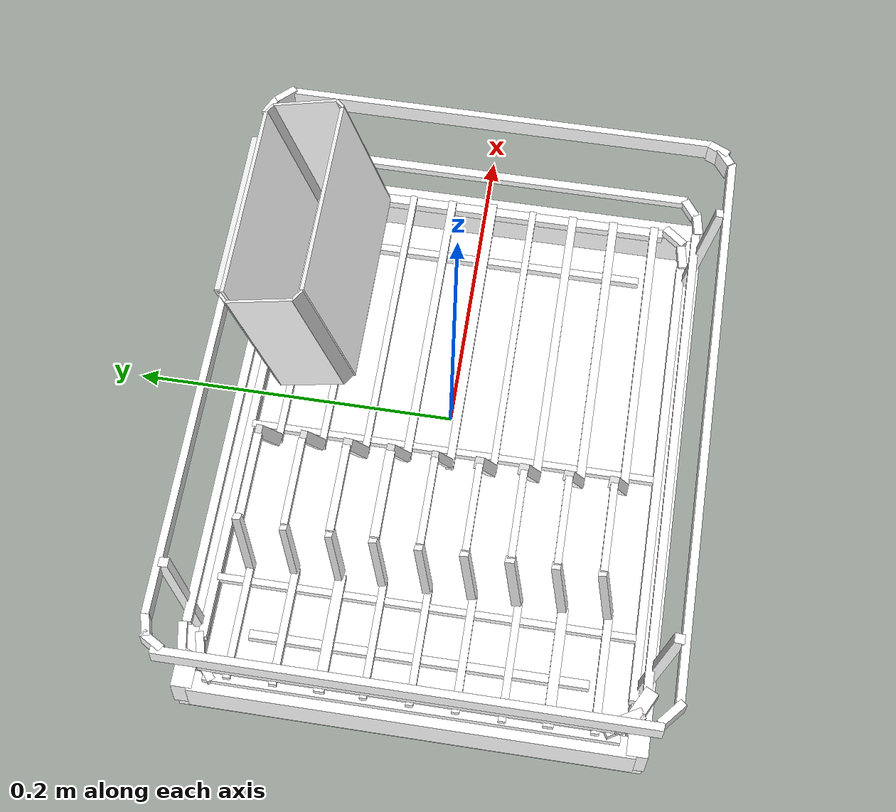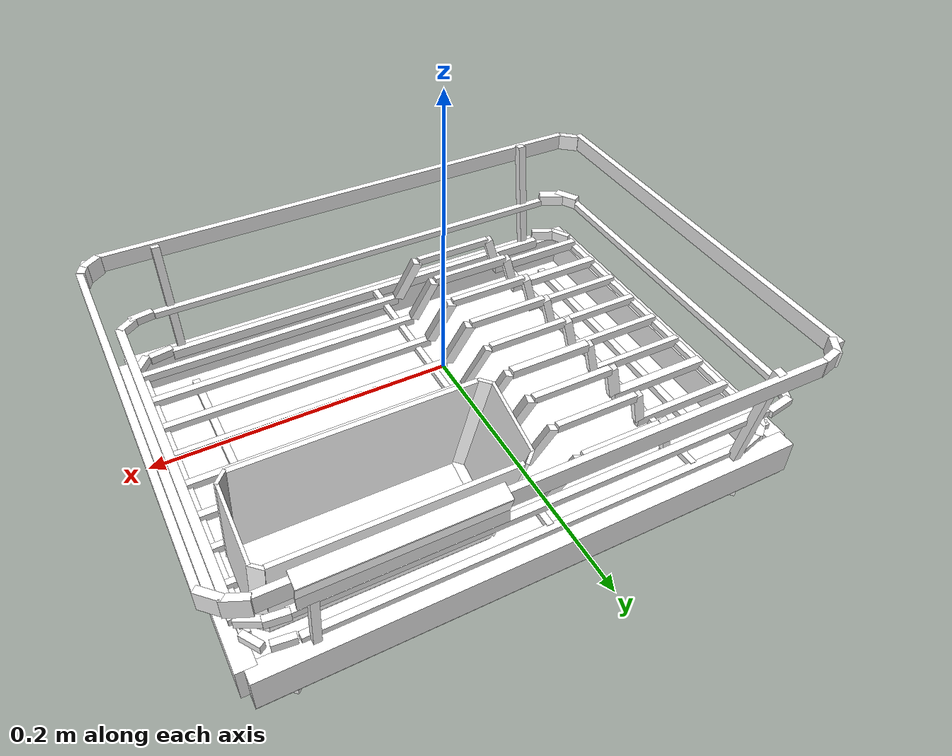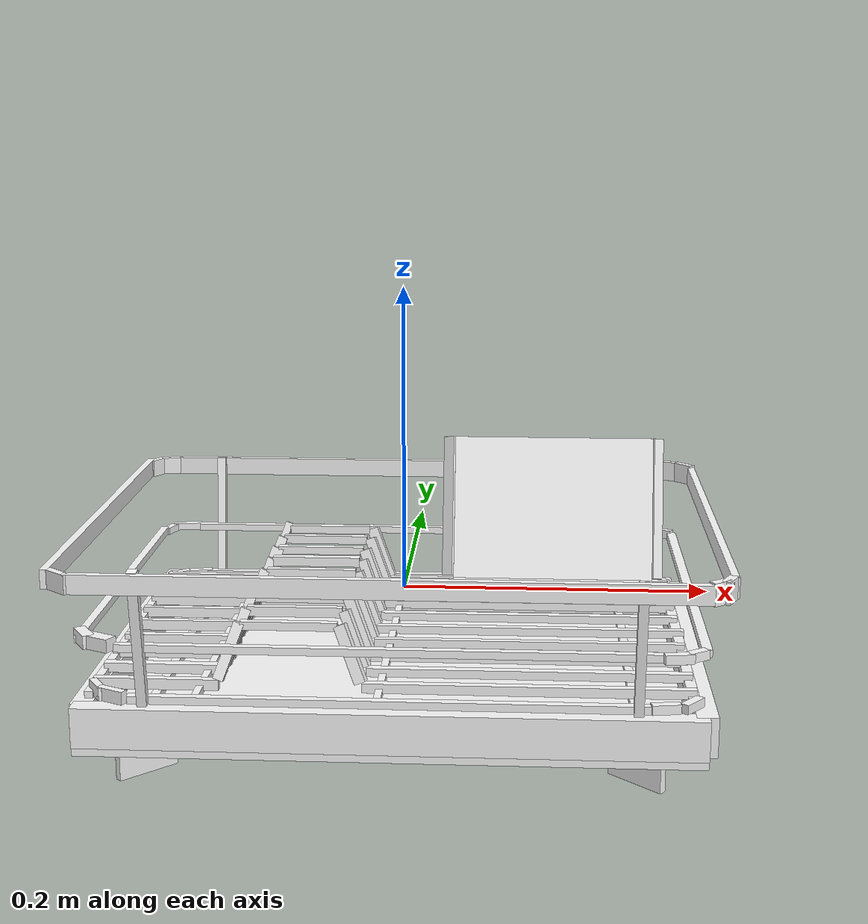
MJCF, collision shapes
<?xml version='1.0' encoding='UTF-8'?>
<mujoco model="model">
  <option timestep="0.002" gravity="0.0 0.0 -9.81"/>
  <compiler angle="radian"/>
  <asset>
    <mesh file="visual/DishRack026.obj" name="DishRack026_vis"/>
    <texture file="visual/T_BC001.png" name="DishRack026_material" type="2d"/>
    <material name="DishRack026_material" rgba="1 1 1 1.0" texture="DishRack026_material" shininess="0.4472135901451111" specular="0.3103448502657381"/>
  </asset>
  <default>
    <default class="visual">
      <geom conaffinity="0" contype="0" group="1" type="mesh"/>
    </default>
    <default class="collision">
      <geom group="0" rgba="1 1 1 0.25" density="1.0" solref="0.004 1" solimp="0.998 0.998 0.001"/>
    </default>
    <default class="spawn">
      <geom group="0" rgba="1 1 1 0.5" contype="0" conaffinity="0"/>
      <site group="0" rgba="1 1 1 0.5"/>
    </default>
    <default class="region">
      <geom group="1" conaffinity="0" contype="0" rgba="0 1 0 0" mass="0"/>
    </default>
  </default>
  <worldbody>
    <body>
      <body name="object">
        <geom mesh="DishRack026_vis" type="mesh" solimp="0.998 0.998 0.001" solref="0.001 1" friction="0.95 0.3 0.1" class="visual" material="DishRack026_material"/>
        <geom type="box" pos="0.08297205 -0.00259412 -0.02854885" size="0.10270405560731888 0.002644048072397709 0.0026440327055752277" quat="1.0 0.0 0.0 0.0" class="collision"/>
        <geom type="box" pos="-0.14411774 -0.00259410 -0.02854885" size="0.03854221850633621 0.002292489632964134 0.003455549944192171" quat="1.0 0.0 0.0 0.0" class="collision"/>
        <geom type="box" pos="-0.06304360 0.00497965 0.00729414" size="0.0298176072537899 0.002258749445900321 0.0027817783411592245" quat="1.0 0.0 0.0 0.0" class="collision"/>
        <geom type="box" pos="-0.10058175 0.00173428 -0.00839330" size="0.01863647811114788 0.0025966062676161528 0.003222791710868478" quat="0.05916276574134827 0.5707959532737732 -0.09514856338500977 -0.8134116530418396" class="collision"/>
        <geom type="box" pos="-0.02467144 0.00159088 -0.00877518" size="0.01863648183643818 0.0022587452549487352 0.002897978527471423" quat="0.02136722207069397 0.8232117891311646 -0.10998589545488358 -0.5565688610076904" class="collision"/>
        <geom type="box" pos="0.08297204 0.02547713 -0.02854885" size="0.10087007284164429 0.002679454395547509 0.002676483476534486" quat="1.0 0.0 0.0 0.0" class="collision"/>
        <geom type="box" pos="-0.14411774 0.02547715 -0.02854885" size="0.03854243457317352 0.0022587270941585302 0.003400446381419897" quat="1.0 0.0 0.0 0.0" class="collision"/>
        <geom type="box" pos="-0.06304360 0.03305090 0.00729414" size="0.029817912727594376 0.0029407513793557882 0.0031736711971461773" quat="1.0 0.0 0.0 0.0" class="collision"/>
        <geom type="box" pos="-0.10022680 0.02977257 -0.00851804" size="0.01863648183643818 0.002500756410881877 0.002882425207644701" quat="0.05916276574134827 0.5707959532737732 -0.09514856338500977 -0.8134116530418396" class="collision"/>
        <geom type="box" pos="-0.02453295 0.02964900 -0.00871811" size="0.018636485561728477 0.0025354023091495037 0.0031442022882401943" quat="0.02136722207069397 0.8232117891311646 -0.10998589545488358 -0.5565688610076904" class="collision"/>
        <geom type="box" pos="0.08297205 0.05247835 -0.02854885" size="0.10087007284164429 0.0022587827406823635 0.002655325224623084" quat="1.0 0.0 0.0 0.0" class="collision"/>
        <geom type="box" pos="-0.14411774 0.05247838 -0.02854885" size="0.03854243457317352 0.0033422985579818487 0.0031907514203339815" quat="1.0 0.0 0.0 0.0" class="collision"/>
        <geom type="box" pos="-0.06304360 0.06061613 0.00729414" size="0.0298176072537899 0.0025008628144860268 0.00265436596237123" quat="1.0 0.0 0.0 0.0" class="collision"/>
        <geom type="box" pos="-0.09971304 0.05672611 -0.00869858" size="0.01863647997379303 0.002258744789287448 0.004188038408756256" quat="0.05916276574134827 0.5707959532737732 -0.09514856338500977 -0.8134116530418396" class="collision"/>
        <geom type="box" pos="-0.02533390 0.05672611 -0.00904818" size="0.01863648183643818 0.0030717826448380947 0.003718895837664604" quat="0.02136722207069397 0.8232117891311646 -0.10998589545488358 -0.5565688610076904" class="collision"/>
        <geom type="box" pos="0.08297204 0.08071831 -0.02854885" size="0.10087007284164429 0.002258760156109929 0.002851944649592042" quat="1.0 0.0 0.0 0.0" class="collision"/>
        <geom type="box" pos="-0.14411774 0.08071832 -0.02854885" size="0.03854243457317352 0.002408964093774557 0.003414645791053772" quat="1.0 0.0 0.0 0.0" class="collision"/>
        <geom type="box" pos="-0.06304359 0.08886884 0.00729414" size="0.0298176072537899 0.002258749445900321 0.0028649321757256985" quat="1.0 0.0 0.0 0.0" class="collision"/>
        <geom type="box" pos="-0.10015163 0.08500676 -0.00854445" size="0.01863647624850273 0.0022587445564568043 0.0033641743939369917" quat="0.05916276574134827 0.5707959532737732 -0.09514856338500977 -0.8134116530418396" class="collision"/>
        <geom type="box" pos="-0.02424963 0.08486333 -0.00860137" size="0.01863648183643818 0.0022587452549487352 0.003586377250030637" quat="0.02136722207069397 0.8232117891311646 -0.10998589545488358 -0.5565688610076904" class="collision"/>
        <geom type="box" pos="0.08297207 0.10908440 -0.02854885" size="0.10087007284164429 0.002258760156109929 0.002666654996573925" quat="1.0 0.0 0.0 0.0" class="collision"/>
        <geom type="box" pos="-0.14411774 0.10908441 -0.02854885" size="0.03854243457317352 0.0022587506100535393 0.0026470862794667482" quat="1.0 0.0 0.0 0.0" class="collision"/>
        <geom type="box" pos="-0.06304359 0.11665818 0.00729414" size="0.02897784858942032 0.002576007740572095 0.0028175346087664366" quat="1.0 0.0 0.0 0.0" class="collision"/>
        <geom type="box" pos="-0.10042195 0.11339797 -0.00844945" size="0.021772367879748344 0.002638814738020301 0.002638814738020301" quat="0.05916276574134827 0.5707959532737732 -0.09514856338500977 -0.8134116530418396" class="collision"/>
        <geom type="box" pos="-0.02492847 0.11329376 -0.00888112" size="0.01863648183643818 0.0022587452549487352 0.004043851513415575" quat="0.02136722207069397 0.8232117891311646 -0.10998589545488358 -0.5565688610076904" class="collision"/>
        <geom type="box" pos="0.08297205 -0.03047064 -0.02854885" size="0.10087007284164429 0.002258760156109929 0.0026656959671527147" quat="1.0 0.0 0.0 0.0" class="collision"/>
        <geom type="box" pos="-0.14411774 -0.03047062 -0.02854885" size="0.03854243457317352 0.002482121344655752 0.0029365161899477243" quat="1.0 0.0 0.0 0.0" class="collision"/>
        <geom type="box" pos="-0.06304360 -0.02289687 0.00729414" size="0.0298176072537899 0.002258749445900321 0.0028855446726083755" quat="1.0 0.0 0.0 0.0" class="collision"/>
        <geom type="box" pos="-0.10037526 -0.02616140 -0.00846586" size="0.01863647997379303 0.002740719588473439 0.0029559656977653503" quat="0.05916276574134827 0.5707959532737732 -0.09514856338500977 -0.8134116530418396" class="collision"/>
        <geom type="box" pos="-0.02533391 -0.02622289 -0.00904817" size="0.01863648183643818 0.0028797637205570936 0.003790716640651226" quat="0.02136722207069397 0.8232117891311646 -0.10998589545488358 -0.5565688610076904" class="collision"/>
        <geom type="box" pos="0.08297205 -0.05825591 -0.02854885" size="0.10086970031261444 0.0027472758665680885 0.0025831367820501328" quat="1.0 0.0 0.0 0.0" class="collision"/>
        <geom type="box" pos="-0.14411774 -0.05870432 -0.02854885" size="0.03960170969367027 0.002381022786721587 0.0028600716032087803" quat="1.0 0.0 0.0 0.0" class="collision"/>
        <geom type="box" pos="-0.06304359 -0.05068214 0.00729414" size="0.0298176072537899 0.002258764347061515 0.0028024876955896616" quat="1.0 0.0 0.0 0.0" class="collision"/>
        <geom type="box" pos="-0.10023928 -0.05395930 -0.00851365" size="0.01863647997379303 0.003043936099857092 0.002951392438262701" quat="0.05916276574134827 0.5707959532737732 -0.09514856338500977 -0.8134116530418396" class="collision"/>
        <geom type="box" pos="-0.02533391 -0.05400816 -0.00904818" size="0.01863648183643818 0.00320336758159101 0.0035383941140025854" quat="0.02136722207069397 0.8232117891311646 -0.10998589545488358 -0.5565688610076904" class="collision"/>
        <geom type="box" pos="0.08297204 -0.08631748 -0.02854885" size="0.10087007284164429 0.0028494014404714108 0.0027157177682965994" quat="1.0 0.0 0.0 0.0" class="collision"/>
        <geom type="box" pos="-0.14411774 -0.08631747 -0.02854885" size="0.03854243457317352 0.0031967293471097946 0.0030366668943315744" quat="1.0 0.0 0.0 0.0" class="collision"/>
        <geom type="box" pos="-0.06304359 -0.07874373 0.00729414" size="0.0298176072537899 0.002258749445900321 0.0031727340538054705" quat="1.0 0.0 0.0 0.0" class="collision"/>
        <geom type="box" pos="-0.09971306 -0.08206972 -0.00869858" size="0.01863647997379303 0.002768644131720066 0.003217231947928667" quat="0.05916276574134827 0.5707959532737732 -0.09514856338500977 -0.8134116530418396" class="collision"/>
        <geom type="box" pos="-0.02533392 -0.08206974 -0.00904817" size="0.018636485561728477 0.003174042562022805 0.003173069329932332" quat="0.02136722207069397 0.8232117891311646 -0.10998589545488358 -0.5565688610076904" class="collision"/>
        <geom type="box" pos="0.08297204 -0.11440633 -0.02854885" size="0.10086977481842041 0.0026458229403942823 0.0029868753626942635" quat="1.0 0.0 0.0 0.0" class="collision"/>
        <geom type="box" pos="-0.14411774 -0.11440632 -0.02854885" size="0.03854243457317352 0.002556067891418934 0.003436016384512186" quat="1.0 0.0 0.0 0.0" class="collision"/>
        <geom type="box" pos="-0.06304362 -0.10683259 0.00729414" size="0.0298176072537899 0.0022587613202631474 0.002643960528075695" quat="1.0 0.0 0.0 0.0" class="collision"/>
        <geom type="box" pos="-0.09971307 -0.11015857 -0.00869858" size="0.01863647811114788 0.002584431553259492 0.003318779869005084" quat="0.05916276574134827 0.5707959532737732 -0.09514856338500977 -0.8134116530418396" class="collision"/>
        <geom type="box" pos="-0.02533392 -0.11015859 -0.00904818" size="0.01863648183643818 0.0030374007765203714 0.00363434967584908" quat="0.02136722207069397 0.8232117891311646 -0.10998589545488358 -0.5565688610076904" class="collision"/>
        <geom type="box" pos="-0.00095814 -0.13528079 -0.03238142" size="0.15641935169696808 0.0027278487104922533 0.003721311455592513" quat="1.0 0.0 0.0 0.0" class="collision"/>
        <geom type="box" pos="-0.18235221 -0.00298469 -0.03238142" size="0.0025881559122353792 0.12698045372962952 0.003297429298982024" quat="1.0 0.0 0.0 0.0" class="collision"/>
        <geom type="box" pos="-0.00095811 0.12962707 -0.03238142" size="0.15641935169696808 0.002695714356377721 0.0031396530102938414" quat="1.0 0.0 0.0 0.0" class="collision"/>
        <geom type="box" pos="0.18187302 -0.00298474 -0.03238142" size="0.0033590998500585556 0.11764655262231827 0.0029583782888948917" quat="1.0 0.0 0.0 0.0" class="collision"/>
        <geom type="box" pos="-0.00097026 -0.14057112 0.00325226" size="0.1616954803466797 0.0025900534819811583 0.0023349334951490164" quat="1.0 0.0 0.0 0.0" class="collision"/>
        <geom type="box" pos="-0.18729541 -0.00298734 0.00325225" size="0.0026407246477901936 0.12532804906368256 0.0024062308948487043" quat="1.0 0.0 0.0 0.0" class="collision"/>
        <geom type="box" pos="-0.00097023 0.13447408 0.00325225" size="0.16169551014900208 0.002788593526929617 0.0023349381517618895" quat="1.0 0.0 0.0 0.0" class="collision"/>
        <geom type="box" pos="0.18692352 -0.00298740 0.00325225" size="0.0030244558583945036 0.1295209527015686 0.0024867283646017313" quat="1.0 0.0 0.0 0.0" class="collision"/>
        <geom type="box" pos="-0.20027497 -0.00298733 0.04667710" size="0.0024333966430276632 0.1453310251235962 0.0059398324228823185" quat="1.0 0.0 0.0 0.0" class="collision"/>
        <geom type="box" pos="0.20032540 -0.00298739 0.04667710" size="0.002335064811632037 0.13945893943309784 0.0062176804058253765" quat="1.0 0.0 0.0 0.0" class="collision"/>
        <geom type="box" pos="0.00002520 0.14982611 0.04667711" size="0.17976492643356323 0.002335140947252512 0.006155320443212986" quat="1.0 0.0 0.0 0.0" class="collision"/>
        <geom type="box" pos="0.00002521 -0.15570724 0.04667711" size="0.1870928406715393 0.002430332824587822 0.005932161584496498" quat="1.0 0.0 0.0 0.0" class="collision"/>
        <geom type="box" pos="-0.14733988 -0.00255484 -0.04203986" size="0.0027638664469122887 0.10569725930690765 0.0025705043226480484" quat="1.0 0.0 0.0 0.0" class="collision"/>
        <geom type="box" pos="-0.00743357 -0.00255485 -0.03107877" size="0.0022588639985769987 0.1309802234172821 0.002258744789287448" quat="1.0 0.0 0.0 0.0" class="collision"/>
        <geom type="box" pos="-0.11689518 -0.00255484 -0.03107877" size="0.0022588639985769987 0.1309802234172821 0.002258744789287448" quat="1.0 0.0 0.0 0.0" class="collision"/>
        <geom type="box" pos="-0.14725235 -0.14436064 0.00257089" size="0.051581971347332 0.003019158262759447 0.0030191584955900908" quat="0.5347155332565308 -0.4626871347427368 0.46268749237060547 0.5347150564193726" class="collision"/>
        <geom type="box" pos="0.14765161 -0.14436064 0.00257090" size="0.04936724901199341 0.0028895277064293623 0.0028895277064293623" quat="0.5347155332565308 -0.4626871347427368 0.46268749237060547 0.5347150564193726" class="collision"/>
        <geom type="box" pos="-0.14725235 0.13892106 0.00326539" size="0.05070149526000023 0.0029547216836363077 0.0030098517891019583" quat="0.46201613545417786 -0.5352950692176819 0.5352975726127625 0.4620138704776764" class="collision"/>
        <geom type="box" pos="0.14765166 0.13892108 0.00326536" size="0.03859039396047592 0.00266763917170465 0.0025936125312000513" quat="0.46201613545417786 -0.5352950692176819 0.5352975726127625 0.4620138704776764" class="collision"/>
        <geom type="box" pos="0.14751473 -0.00255488 -0.04203986" size="0.002617183141410351 0.10569744557142258 0.002534809522330761" quat="1.0 0.0 0.0 0.0" class="collision"/>
        <geom type="box" pos="-0.00039510 -0.00305377 -0.06136273" size="0.1896810680627823 0.14342518150806427 0.0028383994940668344" quat="1.0 0.0 0.0 0.0" class="collision"/>
        <geom type="box" pos="0.14987195 0.11634137 -0.07213952" size="0.020738855004310608 0.0022247857414186 0.011162265203893185" quat="1.3241212570846983e-07 -0.9228867888450623 -0.38507139682769775 -1.2128529647270625e-07" class="collision"/>
        <geom type="box" pos="0.14862457 -0.12220793 -0.07213952" size="0.02073885314166546 0.002224784577265382 0.01116226427257061" quat="7.867938300876176e-09 -0.924866259098053 0.38029250502586365 -1.7939115082299395e-07" class="collision"/>
        <geom type="box" pos="-0.15013160 -0.12220792 -0.07213952" size="0.020738855004310608 0.0022247848100960255 0.011162265203893185" quat="1.7969269094919582e-07 0.3850715458393097 -0.9228867292404175 7.497618526031147e-08" class="collision"/>
        <geom type="box" pos="-0.14888427 0.11634138 -0.07213952" size="0.020738855004310608 0.0022247848100960255 0.011162265203893185" quat="1.8007814617249096e-07 -0.38029199838638306 -0.9248664975166321 -7.404558743928646e-08" class="collision"/>
        <geom type="box" pos="0.09958382 0.13354849 0.01918682" size="0.06981916725635529 0.0013495730236172676 0.050033558160066605" quat="0.9889756441116333 -0.14807820320129395 -3.586824703916136e-08 -5.759208079325617e-07" class="collision"/>
        <geom type="box" pos="0.09958380 0.08265387 0.03432588" size="0.06981916725635529 0.0013495730236172676 0.050033558160066605" quat="0.9889756441116333 -0.14807820320129395 -3.586824703916136e-08 -5.759208079325617e-07" class="collision"/>
        <geom type="box" pos="0.02246079 0.10841134 0.02764809" size="0.022217722609639168 0.000947622989770025 0.04924539476633072" quat="0.6993109583854675 -0.10470688343048096 -0.10470714420080185 -0.6993118524551392" class="collision"/>
        <geom type="box" pos="0.17547996 0.10873303 0.02725473" size="0.022217722609639168 0.000947622989770025 0.04924539476633072" quat="0.6993109583854675 -0.10470688343048096 -0.10470714420080185 -0.6993118524551392" class="collision"/>
        <geom type="box" pos="0.17294110 0.08511404 0.03448982" size="0.0045469109900295734 0.0009476237464696169 0.04924539476633072" quat="0.35886073112487793 -0.05373191833496094 -0.1379856914281845 -0.9215703010559082" class="collision"/>
        <geom type="box" pos="0.17259803 0.13182720 0.02018039" size="0.004546910524368286 0.0009476239210925996 0.04924539476633072" quat="0.9330652356147766 -0.13970664143562317 -0.049083080142736435 -0.3278142809867859" class="collision"/>
        <geom type="box" pos="0.02519751 0.13182720 0.02018039" size="0.004546910524368286 0.0009476231061853468 0.04924539476633072" quat="0.9215704202651978 -0.1379854381084442 0.05373205244541168 0.35886043310165405" class="collision"/>
        <geom type="box" pos="0.02554060 0.08511406 0.03448982" size="0.004546910524368286 0.0009476239793002605 0.049245402216911316" quat="0.327814519405365 -0.04908297210931778 0.13970687985420227 0.9330651164054871" class="collision"/>
        <geom type="box" pos="0.09958382 0.09347538 -0.02142533" size="0.06981917470693588 0.0013495730236172676 0.02750536799430847" quat="0.5946044325828552 -0.8040183782577515 -7.516041478083935e-08 -2.4865795467121643e-07" class="collision"/>
        <geom type="box" pos="0.09932449 0.15073153 0.05289480" size="0.05992313474416733 0.0007072640582919121 0.005674341227859259" quat="0.7990046143531799 0.6013249158859253 1.1257279197707248e-07 -7.909252985882631e-07" class="collision"/>
        <geom type="box" pos="0.09932449 0.15396595 0.04593730" size="0.059923142194747925 0.000707264116499573 0.006068082991987467" quat="0.13267366588115692 0.9911597967147827 4.4059879655833356e-07 -3.5643404316942906e-07" class="collision"/>
        <geom type="box" pos="0.09932451 0.15266373 0.03613254" size="0.05992312729358673 0.0007072640000842512 0.004493714775890112" quat="0.046129852533340454 -0.9989354610443115 -3.7833342503290623e-07 2.489429675733845e-07" class="collision"/>
        <geom type="box" pos="0.19110189 -0.15070744 0.04667711" size="0.006934481672942638 0.00281967269256711 0.006883093621581793" quat="0.9528968334197998 0.0 0.0 0.30329468846321106" class="collision"/>
        <geom type="box" pos="0.18561627 0.14834703 0.04730154" size="0.007700122427195311 0.002334937918931246 0.0068931193090975285" quat="0.20673134922981262 0.0 0.0 0.9783977270126343" class="collision"/>
        <geom type="box" pos="-0.00039515 -0.14117925 -0.04625592" size="0.1896807998418808 0.006598079577088356 0.012698368169367313" quat="1.0 0.0 0.0 0.0" class="collision"/>
        <geom type="box" pos="-0.00039506 0.13637577 -0.04625596" size="0.1896807998418808 0.006598079577088356 0.012698368169367313" quat="1.0 0.0 0.0 0.0" class="collision"/>
        <geom type="box" pos="-0.18496518 -0.00371125 -0.04625600" size="0.0065980637446045876 0.13707062602043152 0.012698329985141754" quat="1.0 0.0 0.0 0.0" class="collision"/>
        <geom type="box" pos="0.18818268 -0.00371137 -0.04625586" size="0.0065980637446045876 0.1370706558227539 0.012698329985141754" quat="1.0 0.0 0.0 0.0" class="collision"/>
        <geom type="box" pos="0.19588524 0.14079229 0.04730154" size="0.007700122427195311 0.002334937686100602 0.0068931193090975285" quat="0.38515526056289673 0.0 0.0 0.9228518009185791" class="collision"/>
        <geom type="box" pos="0.16672780 0.13532777 0.00430400" size="0.007700122427195311 0.0023349374532699585 0.0030792350880801678" quat="0.056866783648729324 0.0 0.0 0.9983817934989929" class="collision"/>
        <geom type="box" pos="0.18031397 0.13036385 0.00430400" size="0.007700123358517885 0.0023349374532699585 0.0030792350880801678" quat="0.24162554740905762 0.0 0.0 0.9703695774078369" class="collision"/>
        <geom type="box" pos="0.16447540 0.12874384 -0.03036496" size="0.007700122427195311 0.0023349374532699585 0.0030792350880801678" quat="0.056866783648729324 0.0 0.0 0.9983817934989929" class="collision"/>
        <geom type="box" pos="0.18012172 0.12057682 -0.03036496" size="0.007700123358517885 0.0023349374532699585 0.0030792350880801678" quat="0.8777662515640259 0.0 -0.0 -0.4790892004966736" class="collision"/>
        <geom type="box" pos="-0.19132656 -0.15148113 0.04667711" size="0.009431353770196438 0.0024301158264279366 0.005932147614657879" quat="0.9394705891609192 0.0 -0.0 -0.34262949228286743" class="collision"/>
        <geom type="box" pos="-0.17212522 -0.13871023 0.00548173" size="0.009431354701519012 0.004380300175398588 0.0041321516036987305" quat="0.9731106162071228 0.0 -0.0 -0.2303381860256195" class="collision"/>
        <geom type="box" pos="-0.18288168 -0.13110683 0.00548173" size="0.009431356564164162 0.0036595675628632307 0.0041321516036987305" quat="0.8706509470939636 0.0 -0.0 -0.49190136790275574" class="collision"/>
        <geom type="box" pos="-0.16627280 -0.13732721 -0.02823525" size="0.009431354701519012 0.002430116292089224 0.004132152069360018" quat="0.9731106162071228 0.0 -0.0 -0.2303381860256195" class="collision"/>
        <geom type="box" pos="-0.17693612 -0.12862233 -0.02823525" size="0.009431354701519012 0.002430116292089224 0.004132152069360018" quat="0.8706509470939636 0.0 -0.0 -0.49190136790275574" class="collision"/>
        <geom type="box" pos="0.19649732 -0.14633976 0.04667711" size="0.006934481672942638 0.00281967269256711 0.006883093621581793" quat="0.8485378623008728 0.0 0.0 0.5291346907615662" class="collision"/>
        <geom type="box" pos="0.18108712 -0.13512071 0.00298424" size="0.006934481672942638 0.00281967269256711 0.002960451180115342" quat="0.9548816680908203 0.0 0.0 0.2969866096973419" class="collision"/>
        <geom type="box" pos="0.16993950 -0.14090518 0.00298424" size="0.008766144514083862 0.00281967269256711 0.002960451180115342" quat="0.9965357780456543 0.0 0.0 0.08316516131162643" class="collision"/>
        <geom type="box" pos="0.16385201 -0.13531039 -0.03023556" size="0.008766144514083862 0.00281967269256711 0.002960451180115342" quat="0.9965357780456543 0.0 0.0 0.08316516131162643" class="collision"/>
        <geom type="box" pos="0.17996563 -0.12889882 -0.03023556" size="0.008766144514083862 0.00281967269256711 0.002960451180115342" quat="0.9023138284683228 0.0 0.0 0.43107977509498596" class="collision"/>
        <geom type="box" pos="-0.19503735 0.14234237 0.04667710" size="0.007437428459525108 0.002433264162391424 0.0059398324228823185" quat="0.8702844381332397 0.0 0.0 0.49254950881004333" class="collision"/>
        <geom type="box" pos="-0.18548103 0.14832209 0.04667710" size="0.007437427993863821 0.002433264162391424 0.0059398324228823185" quat="0.9914292693138123 0.0 0.0 0.13064461946487427" class="collision"/>
        <geom type="box" pos="-0.18371856 0.12652026 0.00278777" size="0.006479909177869558 0.002640610095113516 0.0024062308948487043" quat="0.8258970975875854 0.0 0.0 0.5638208985328674" class="collision"/>
        <geom type="box" pos="-0.17270547 0.13492484 0.00325225" size="0.010010934434831142 0.0026406103279441595 0.0024062308948487043" quat="0.0852113664150238 0.0 -0.0 -0.9963629245758057" class="collision"/>
        <geom type="box" pos="-0.17788027 0.12352084 -0.03238142" size="0.008503186516463757 0.0025880401954054832 0.003297429298982024" quat="0.9419379234313965 0.0 0.0 0.3357870876789093" class="collision"/>
        <geom type="box" pos="-0.16298416 0.12977969 -0.03238142" size="0.008503186516463757 0.0025880401954054832 0.003297429298982024" quat="0.9913297891616821 0.0 0.0 0.13139723241329193" class="collision"/>
        <geom class="region" name="reg_int_0" type="box" pos="-0.142628835 -0.0030209350000000024 0.066137845" size="0.030690394999999995 0.123450165 0.088817655"/>
        <geom class="region" name="reg_int_1" type="box" pos="0.081970345 -0.03079452 0.066137845" size="0.09450829499999999 0.09567658000000001 0.088817655"/>
        <geom size="0.2034375 0.158875 0.08525" pos="-0.0 0.0 0.0" name="reg_bbox" class="region" type="box" quat="1.0 0.0 0.0 0.0"/>
      </body>
    </body>
  </worldbody>
  <actuator/>
</mujoco>
